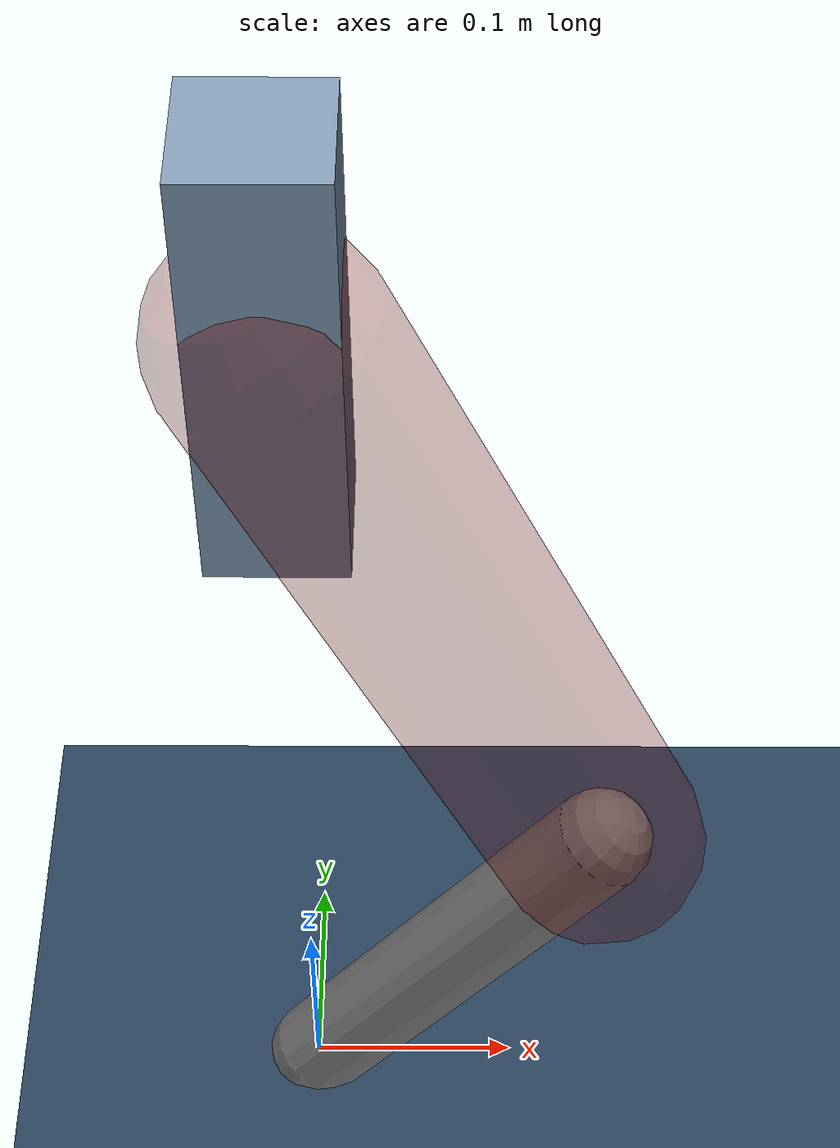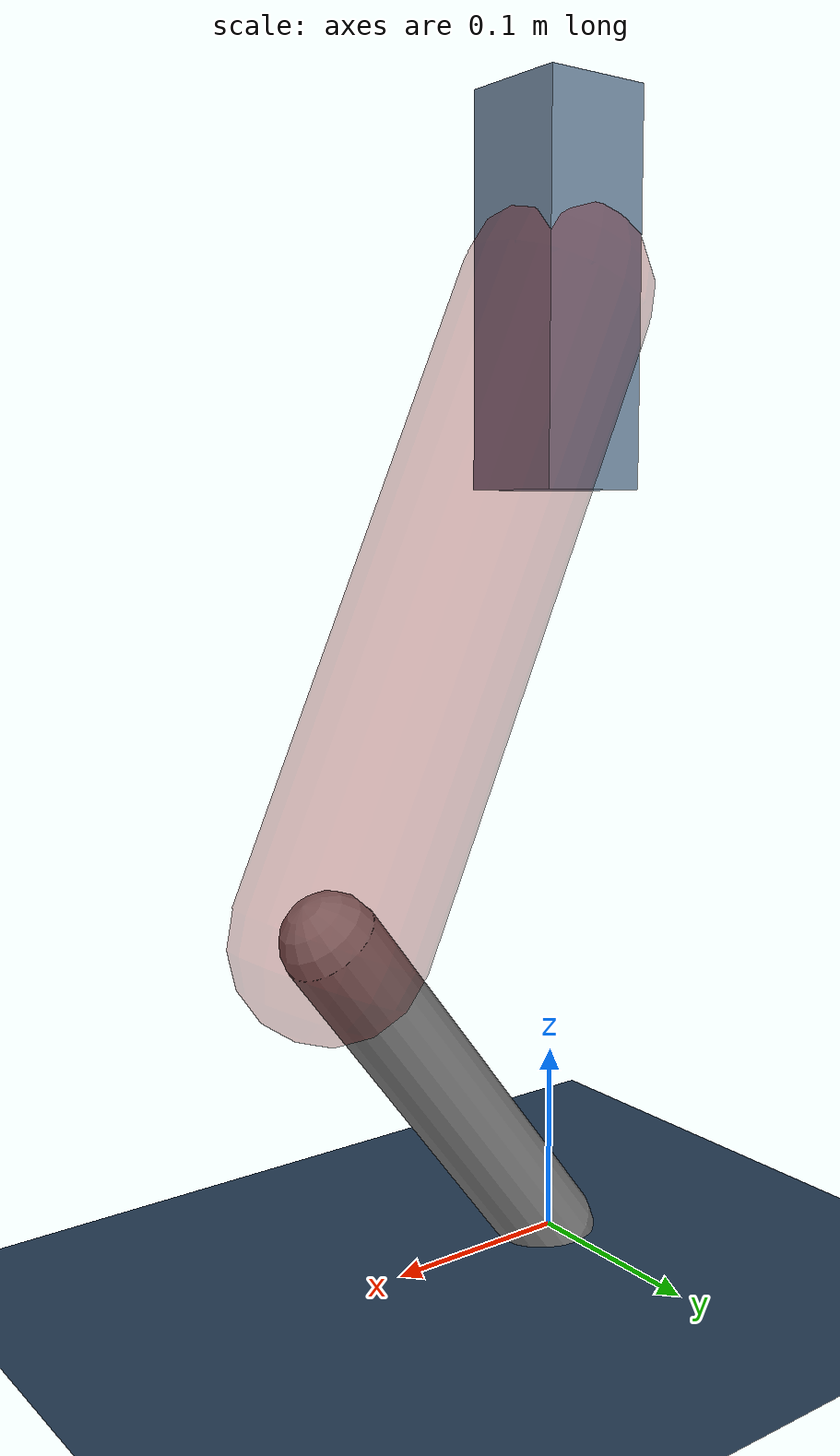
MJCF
<mujoco model="Hopper2D">
	<compiler inertiafromgeom="true" angle="radian" />
	<option timestep="0.001" integrator="implicit" cone="elliptic" solver="Newton" tolerance="1e-10" />

	<default>
		<geom contype="1" conaffinity="1" condim="3" friction="2 0.005 0.0001" solref="0.005 1" />
		<joint limited="true" damping="0.1" />
	</default>

	<asset>
		<texture name="skybox" type="skybox" builtin="gradient" rgb1=".4 .6 .8" rgb2="0 0 0" width="800" height="800" />
		<texture name="grid" type="2d" builtin="checker" rgb1=".1 .2 .3" rgb2=".2 .3 .4" width="300" height="300" mark="edge" markrgb=".2 .3 .4" />
		<material name="ground" texture="grid" texrepeat="1 1" texuniform="true" reflectance="0.1" />
		<material name="leg" rgba="0.5 0.6 0.7 1" />
	</asset>

	<worldbody>

		<geom name="floor" type="plane" size="5 5 0.25" material="ground" />

		<light directional="false" diffuse="0.8 0.8 0.8" specular="0.3 0.3 0.3" pos="0 0 2" dir="0 0 -1" />
		<light mode="targetbodycom" target="base" directional="false" diffuse="0.8 0.8 0.8" specular="0.3 0.3 0.3" pos="0 0 2" dir="0 0 -1" />

		<camera name="fixed" pos="0 -2 1" xyaxes="1 0 0 0 0 1" />
		<camera name="tracking" mode="trackcom" pos="0 -3 1" />

		<body name="root" pos="0 0 0.5008839451617633">
			<joint name="slide_x" type="slide" axis="1 0 0" range="-100 100" />
			<joint name="slide_z" type="slide" axis="0 0 1" range="0 10" />

			<body name="base" pos="0 0 0">
				<geom name="torso" type="box" size="0.03 0.03 0.1" mass="2.762" material="leg" />

				<body name="link1" pos="0 0 0" euler="0 1.1528587176300598 0">
					<joint type="hinge" axis="0 -1 0" pos="0 0 0" name="hinge1" limited="true" range="-3.14 3.14" stiffness="0" damping="0.1" />
					<geom name="thigh" type="capsule" fromto="0 0 0 0.34660026591703974 0 0" size="0.05" rgba="0.5 0 0 0.3" mass="1.1171407711594152" />

					<body name="link2" pos="0.34660026591703974 0 0" euler="0 1.0703800016552696 0">
						<joint type="hinge" axis="0 -1 0" pos="0 0 0" name="hinge2" limited="true" range="-3.14 3.14" stiffness="0" damping="0.1" />
						<geom name="shank" type="capsule" fromto="0 0 0 0.23170840866403541 0 0" size="0.025" mass="0.4273667269312283" />

					</body>
				</body>
			</body>
		</body>
	</worldbody>

	<actuator>
		<motor name="torque1" joint="hinge1" ctrlrange="-103.62061296029557 103.62061296029557" ctrllimited="true" gear="1" />
		<motor name="torque2" joint="hinge2" ctrlrange="-63.591444701582766 63.591444701582766" ctrllimited="true" gear="1" />
	</actuator>
</mujoco>
